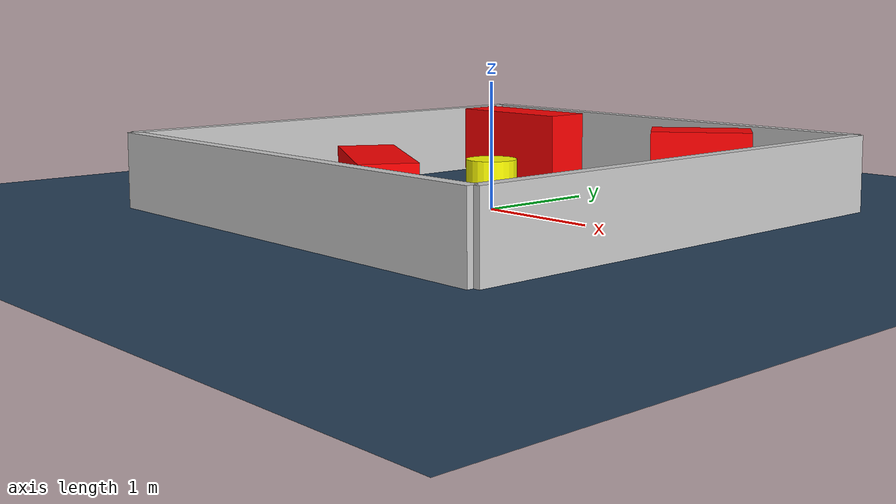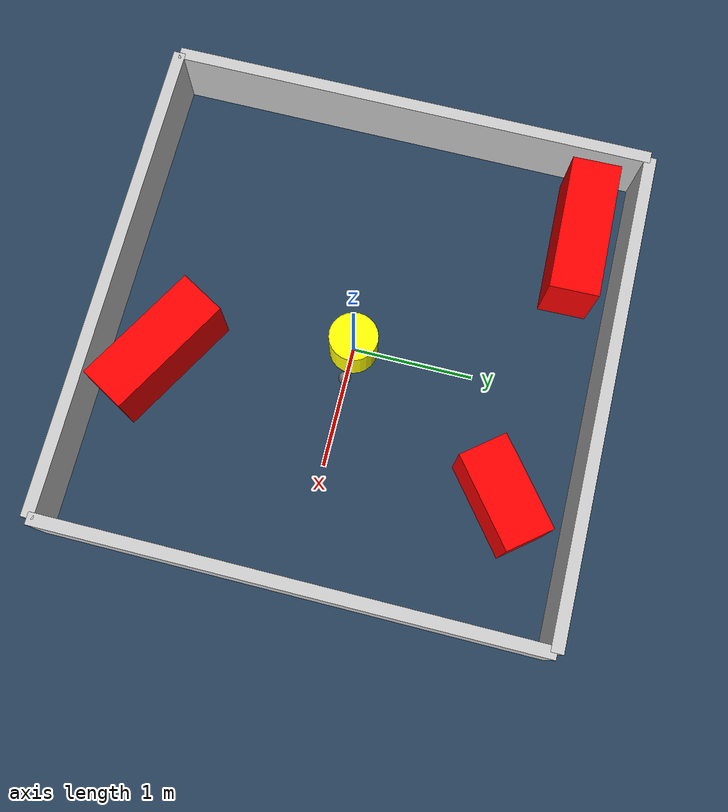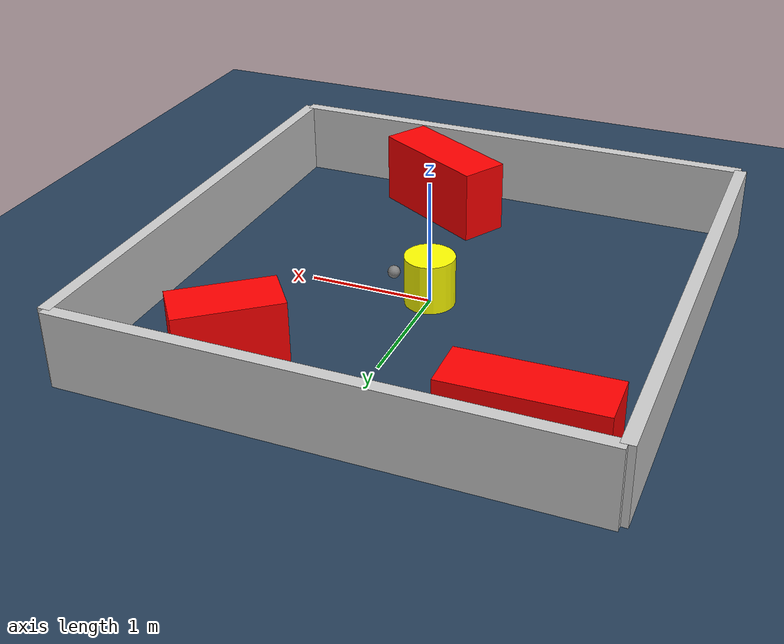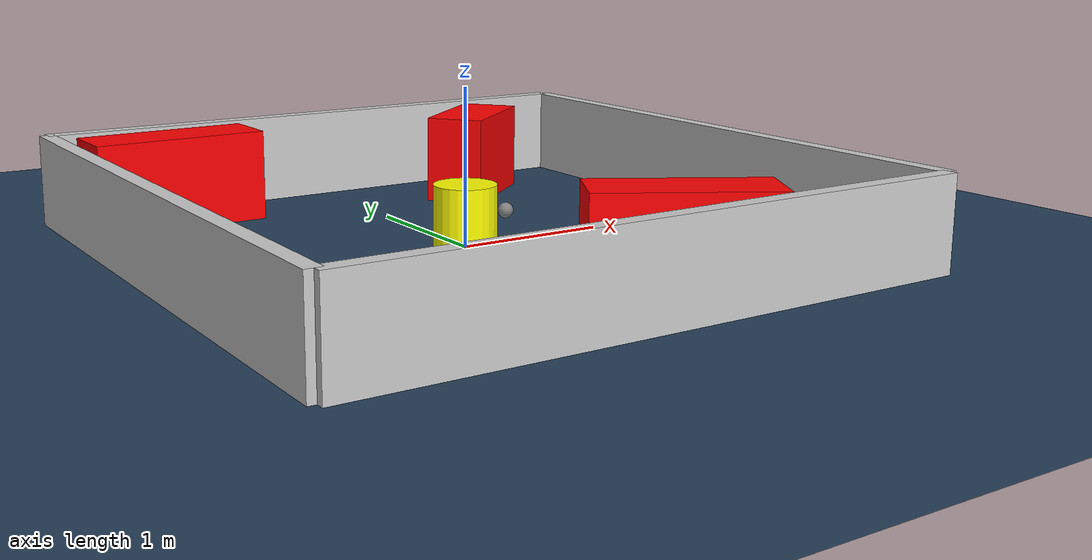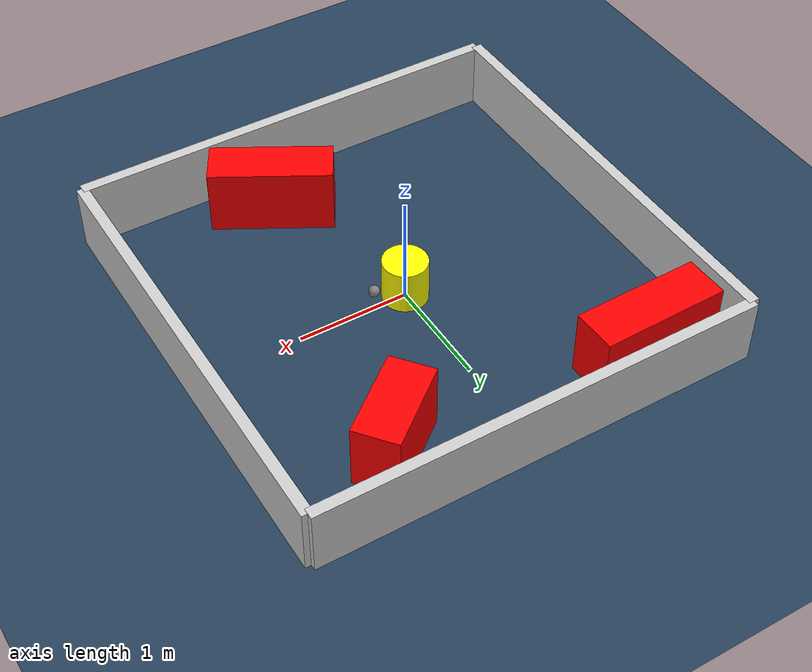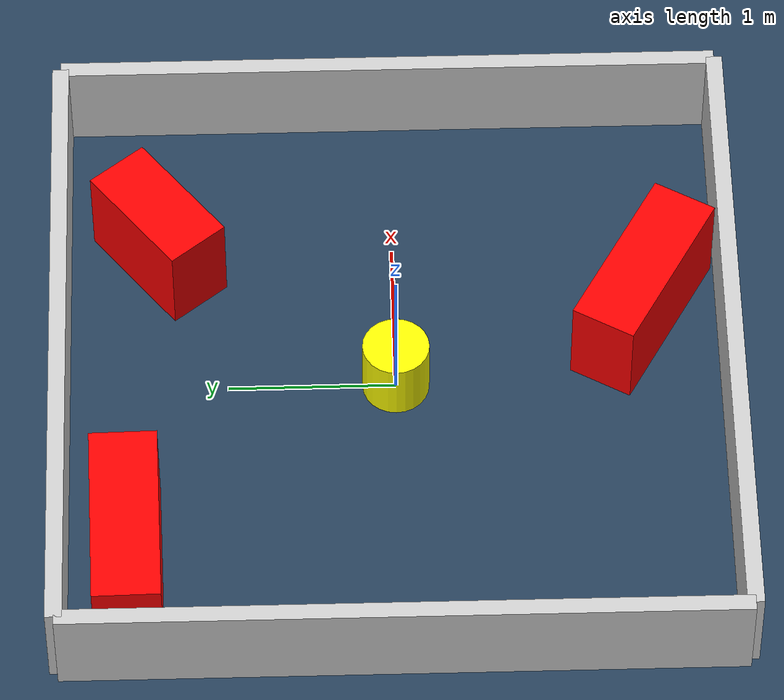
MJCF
<?xml version="1.0" ?>
<mujoco model="generated_environment">
  <option timestep="0.01" integrator="RK4" cone="elliptic"/>
  <default>
    <geom density="1"/>
  </default>
  <asset>
    <texture builtin="gradient" height="3072" rgb1="0.3 0.5 0.7" rgb2="0 0 0" type="skybox" width="512"/>
    <texture builtin="checker" height="300" mark="edge" markrgb="0.8 0.8 0.8" name="groundplane" rgb1="0.2 0.3 0.4" rgb2="0.1 0.2 0.3" type="2d" width="300"/>
    <material name="groundplane" reflectance="0.2" texrepeat="5 5" texture="groundplane" texuniform="true"/>
    <material name="robot" rgba="0.0 1.0 0.0 1"/>
  </asset>
  <worldbody>
    <light dir="0 0 -1" directional="true" pos="0 0 1.5"/>
    <geom condim="4" friction="1.0 0.005 0.001" material="groundplane" name="floor" size="0 0 0.05" type="plane"/>
    <body name="walls">
      <geom name="wall_1" condim="4" pos="-2.0 0.0 0.3" rgba="0.800000011920929 0.800000011920929 0.800000011920929 1.0" size="0.05 2.0 0.3" type="box"/>
      <geom name="wall_2" condim="4" pos="2.0 0.0 0.3" rgba="0.800000011920929 0.800000011920929 0.800000011920929 1.0" size="0.05 2.0 0.3" type="box"/>
      <geom name="wall_3" condim="4" pos="0.0 -2.0 0.3" rgba="0.800000011920929 0.800000011920929 0.800000011920929 1.0" size="2.0 0.05 0.3" type="box"/>
      <geom name="wall_4" condim="4" pos="0.0 2.0 0.3" rgba="0.800000011920929 0.800000011920929 0.800000011920929 1.0" size="2.0 0.05 0.3" type="box"/>
    </body>
    <body name="robot">
      <joint name="joint_x" type="slide" pos="0 0 0" axis="1 0 0"/>
      <joint name="joint_y" type="slide" pos="0 0 0" axis="0 1 0"/>
      <geom name="robot" type="sphere" pos="0.3 0.0 0.2" size="0.05" mass="5." friction="1.0 0.005 0.0001" condim="4" rgba="0.5 0.5 0.5 1.0"/>
      <site name="sensor_ball"/>
    </body>
    <body name="obstacle_movable_1">
      <geom name="obstacle_movable_1" condim="4" pos="0.0 0.0 0.2" euler="0 0 0.0" friction="1.0 0.005 0.001" rgba="1.0 1.0 0.0 1.0" size="0.2 0.2 0.0" type="cylinder" mass="0.1"/>
      <joint type="free"/>
    </body>
    <body name="obstacle_2_static">
      <geom name="obstacle_2_static" condim="4" pos="-1.291978706555195 1.5977739948581828 0.3" euler="0 0 181.20602345935347" friction="1.0 0.005 0.001" rgba="1 0 0 1" size="0.5693199200881991 0.2 0.3" type="box"/>
    </body>
    <body name="obstacle_3_static">
      <geom name="obstacle_3_static" condim="4" pos="0.4598720359148927 -1.4931297820351124 0.3" euler="0 0 330.2283494600803" friction="1.0 0.005 0.001" rgba="1 0 0 1" size="0.5420585191916043 0.2 0.3" type="box"/>
    </body>
    <body name="obstacle_4_static">
      <geom name="obstacle_4_static" condim="4" pos="0.9491622124913994 1.4103496189258131 0.3" euler="0 0 38.393811411432445" friction="1.0 0.005 0.001" rgba="1 0 0 1" size="0.3968166142163284 0.2 0.3" type="box"/>
    </body>
  </worldbody>
  <actuator>
    <motor name="actuator_x" joint="joint_x" gear="1" ctrlrange="-1 1"/>
    <motor name="actuator_y" joint="joint_y" gear="1" ctrlrange="-1 1"/>
  </actuator>
</mujoco>
